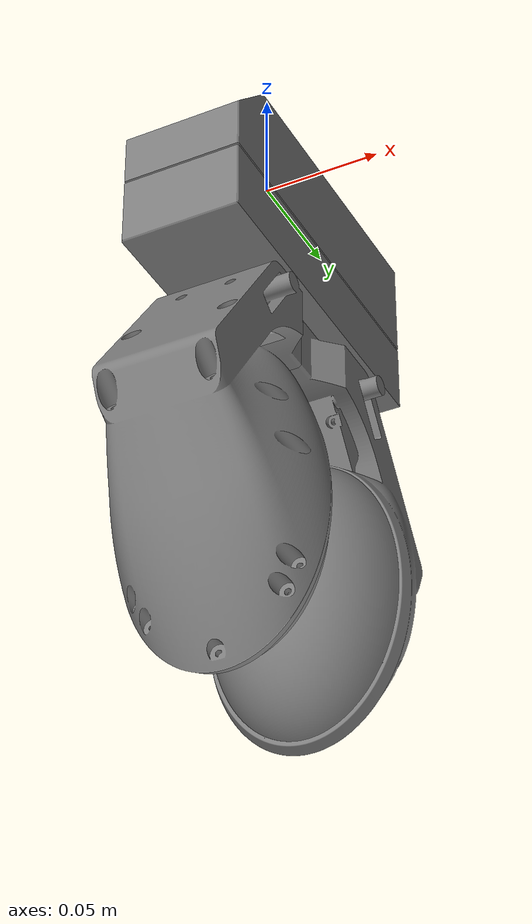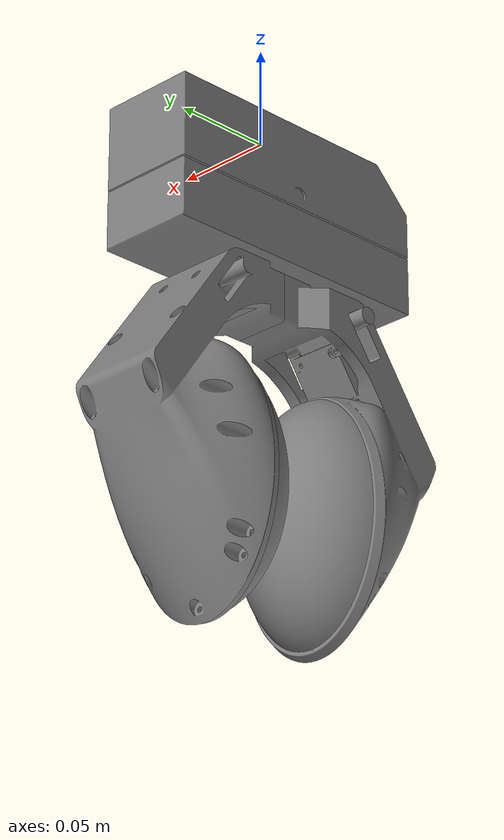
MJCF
<mujoco model="Schunk_Gripper">
  <compiler eulerseq="XYZ"/>
  <asset>
    <mesh name="wsg_body" file="wsg_body.stl" scale="1 1 1"/>
    <mesh name="ellipsoid_bubble_geometry" file="ellipsoid_bubble_geometry.stl" scale="0.001 0.001 0.001"/>
    <mesh name="bubble_finger" file="bubble_finger.stl" scale="0.001 0.001 0.001"/>
  </asset>
  <worldbody>
    <body name="gripper" pos="0 0 0" euler="0 -0 0">
      <inertial pos="0 0 0" mass="0.98888200000000004" fullinertia="0.162992 0.162992 0.16481399999999999 0 0 0"/>
      <geom name="gripper mesh" type="mesh" group="0" pos="0 0 -0.035999999999999997" euler="-90.000210459149713 -3.1805546814635168e-15 -90.000210459149713" mesh="wsg_body"/>
      <freejoint name="schunk_freejoint"/>
      <site name="gripper" pos="0 0 0"/>
      <body name="left_finger_bubble" pos="0 0 -0.072499999999999995" euler="0 -0 0">
        <inertial pos="0 0 0" mass="0.050000000000000003" fullinertia="0.16 0.16 0.16 0 0 0"/>
        <geom name="left_finger_ellipsoid" type="mesh" group="3" contype="0" conaffinity="0" friction="1 0.0050000000000000001 0.0001" pos="0 -0.041665000000000001 -0.1095" euler="0 -0 0" mesh="ellipsoid_bubble_geometry"/>
        <geom name="left_finger_visual_mesh" type="mesh" contype="0" conaffinity="0" group="0" pos="0 0 0" euler="90.000210459149713 -0 179.9998479605043" mesh="bubble_finger"/>
        <geom name="left_finger_bubble" type="mesh" group="0" pos="0 -0.029999999999999999 -0.1095" euler="-179.99999999913413 89.999789538302082 89.999789540949109" mesh="ellipsoid_bubble_geometry"/>
        <joint name="left_finger_sliding_joint" type="slide" pos="0 0 0" axis="0 1 0" limited="true" range="-0.055 0"/>
        <body name="left_finger" pos="0 0 -0.11750000000000001" euler="0 -0 0">
          <inertial pos="0 0 0" mass="0.050000000000000003" fullinertia="0.16 0.16 0.16 0 0 0"/>
        </body>
      </body>
      <body name="right_finger_bubble" pos="0 0 -0.072499999999999995" euler="0 -0 0">
        <inertial pos="0 0 0" mass="0.050000000000000003" fullinertia="0.16 0.16 0.16 0 0 0"/>
        <geom name="right_finger_ellipsoid" type="mesh" group="3" contype="0" conaffinity="0" friction="1 0.0050000000000000001 0.0001" pos="0 0.041665000000000001 -0.1095" euler="0 -0 0" mesh="bubble_finger"/>
        <geom name="right_finger_visual_mesh" type="mesh" contype="0" conaffinity="0" group="0" pos="0 0 0" euler="90.000210459149713 -0 0" mesh="bubble_finger"/>
        <geom name="right_finger_bubble" type="mesh" group="0" pos="0 0.029999999999999999 -0.1095" euler="179.99999999913413 89.999789538302082 -89.999789540949109" mesh="ellipsoid_bubble_geometry"/>
        <joint name="right_finger_sliding_joint" type="slide" pos="0 0 0" axis="0 1 0" limited="true" range="0 0.055"/>
        <body name="right_finger" pos="0 0 -0.11750000000000001" euler="0 -0 0">
          <inertial pos="0 0 0" mass="0.050000000000000003" fullinertia="0.16 0.16 0.16 0 0 0"/>
        </body>
      </body>
    </body>
  </worldbody>

  <actuator>
    <position name="left_motor" joint="left_finger_sliding_joint" kp="1" kv="0" ctrllimited="true" ctrlrange="-1 1"/>
    <position name="right_motor" joint="right_finger_sliding_joint" kp="1" kv="0" ctrllimited="true" ctrlrange="-1 1"/>
  </actuator>

  <sensor>
    <framepos name="gripper" objtype="site" objname="gripper"/>
  </sensor>
</mujoco>
